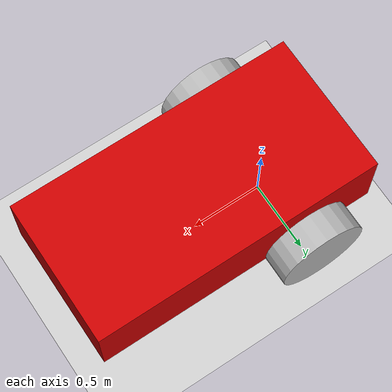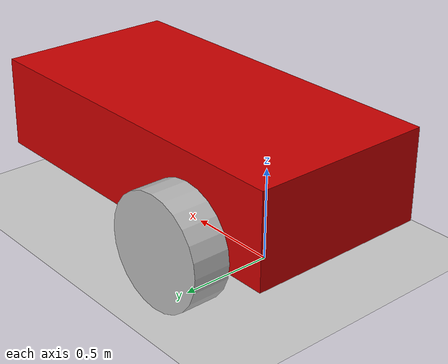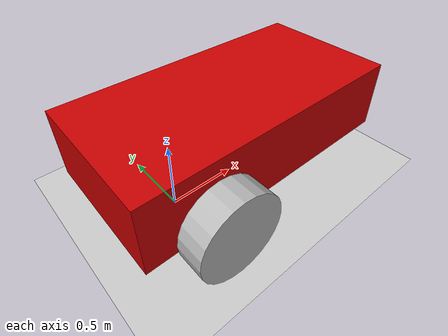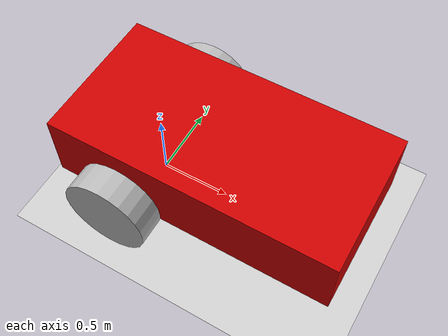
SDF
<sdf version="1.10">
 <world name="car_world">
  <physics name="1ms" type="ignored">
   <max_step_size>0.001</max_step_size>
   <real_time_factor>1.0</real_time_factor>
  </physics>
  <plugin filename="gz-sim-physics-system" name="gz::sim::systems::Physics"/>
  <plugin filename="gz-sim-user-commands-system" name="gz::sim::systems::UserCommands"/>
  <plugin filename="gz-sim-scene-broadcaster-system" name="gz::sim::systems::SceneBroadcaster"/>
  <light type="directional" name="sun">
   <pose>0 0 10 0 0 0</pose>
   <diffuse>0.8 0.8 0.8 1</diffuse>
   <specular>0.2 0.2 0.2 1</specular>
   <attenuation>
    <range>1000</range>
    <constant>0.9</constant>
    <linear>0.01</linear>
    <quadratic>0.001</quadratic>
   </attenuation>
   <direction>-0.5 0.1 -0.9</direction>
  </light>
  <model name="ground_plane">
   <static>true</static>
   <link name="link">
    <collision name="collision"><geometry><plane><normal>0 0 1</normal></plane></geometry></collision>
    <visual name="visual">
     <geometry><plane><normal>0 0 1</normal><size>100 100</size></plane></geometry>
     <material>
      <ambient>0.8 0.8 0.8 1</ambient>
      <diffuse>0.8 0.8 0.8 1</diffuse>
      <specular>0.8 0.8 0.8 1</specular>
     </material>
    </visual>
   </link>
  </model>
  <model name="vehicle_blue" canonical_link="chassis">
   <pose relative_to="world">0 0 0 0 0 0</pose>
   <link name="chassis">
    <pose relative_to="__model__">0.5 0 0.5 0 0 0</pose>
    <inertial>
     <mass>1.14395</mass>
     <inertia>
      <ixx>0.095329</ixx>
      <ixy>0</ixy>
      <ixz>0</ixz>
      <iyy>0.381317</iyy>
      <iyz>0</iyz>
      <izz>0.476646</izz>
     </inertia>
    </inertial>
    <visual name="visual">
     <geometry><box><size>2.0 1.0 0.5</size></box></geometry>
     <material>
      <ambient>0.8 0.0 0.0 1</ambient>
      <diffuse>0.8 0.0 0.0 1</diffuse>
      <specular>0.8 0.0 0.0 1</specular>
     </material>
    </visual>
    <collision name="collision"><geometry><box><size>2.0 1.0 0.5</size></box></geometry></collision>
   </link>
   <joint name="left_wheel_joint" type="revolute">
    <pose relative_to="left_wheel"/>
    <parent>chassis</parent>
    <child>left_wheel</child>
    <axis>
     <xyz expressed_in="__model__">0 1 0</xyz>
     <limit><lower>-1.79769e+308</lower><upper>1.79769e+308</upper></limit>
    </axis>
   </joint>
   <link name="left_wheel">
    <pose relative_to="chassis">-0.5 0.6 -0.2 -1.5707 0 0</pose>
    <inertial>
     <mass>1</mass>
     <inertia><ixx>0.043333</ixx><ixy>0</ixy><ixz>0</ixz><iyy>0.043333</iyy><iyz>0</iyz><izz>0.08</izz></inertia>
    </inertial>
    <visual name="visual">
     <geometry><cylinder><radius>0.3</radius><length>0.2</length></cylinder></geometry>
    </visual>
    <collision name="collision">
     <geometry><cylinder><radius>0.3</radius><length>0.2</length></cylinder></geometry>
    </collision>
   </link>
   <joint name="right_wheel_joint" type="revolute">
    <pose relative_to="right_wheel"/>
    <parent>chassis</parent>
    <child>right_wheel</child>
    <axis>
     <xyz expressed_in="__model__">0 1 0</xyz>
     <limit><lower>-1.79769e+308</lower><upper>1.79769e+308</upper></limit>
    </axis>
   </joint>
   <link name="right_wheel">
    <pose relative_to="chassis">-0.5 -0.6 -0.2 -1.5707 0 0</pose>
    <inertial>
     <mass>1</mass>
     <inertia><ixx>0.043333</ixx><ixy>0</ixy><ixz>0</ixz><iyy>0.043333</iyy><iyz>0</iyz><izz>0.08</izz></inertia>
    </inertial>
    <visual name="visual">
     <geometry><cylinder><radius>0.3</radius><length>0.2</length></cylinder></geometry>
    </visual>
    <collision name="collision">
     <geometry><cylinder><radius>0.3</radius><length>0.2</length></cylinder></geometry>
    </collision>
   </link>
   <joint name="caster_wheel" type="ball"><parent>chassis</parent><child>caster</child></joint>
   <frame name="caster_frame" attached_to="chassis"><pose>0.6 0 -0.2 0 0 0</pose></frame>
   <link name="caster">
    <pose relative_to="caster_frame"/>
    <inertial>
     <mass>1</mass>
     <inertia><ixx>0.016</ixx><ixy>0</ixy><ixz>0</ixz><iyy>0.016</iyy><iyz>0</iyz><izz>0.016</izz></inertia>
    </inertial>
    <visual name="visual"><geometry><sphere><radius>0.3</radius></sphere></geometry></visual>
    <collision name="collision"><geometry><sphere><radius>0.3</radius></sphere></geometry></collision>
   </link>
   <plugin filename="gz-sim-diff-drive-system" name="gz::sim::systems::DiffDrive">
    <left_joint>left_wheel_joint</left_joint>
    <right_joint>right_wheel_joint</right_joint>
    <wheel_separation>1.2</wheel_separation>
    <wheel_radius>0.3</wheel_radius>
    <odom_publish_frequency>1</odom_publish_frequency>
    <topic>cmd_vel</topic>
   </plugin>
   <plugin filename="gz-sim-triggered-publisher-system" name="gz::sim::systems::TriggeredPublisher">
    <input type="gz.msgs.Int32" topic="/keyboard/keypress"><match field="data">16777235</match></input>
    <output type="gz.msgs.Twist" topic="/cmd_vel">linear: {x: 0.5}, angular: {z: 0.0}</output>
   </plugin>
   <plugin filename="gz-sim-triggered-publisher-system" name="gz::sim::systems::TriggeredPublisher">
    <input type="gz.msgs.Int32" topic="/keyboard/keypress"><match field="data">16777237</match></input>
    <output type="gz.msgs.Twist" topic="/cmd_vel">linear: {x: -0.5}, angular: {z: 0.0}</output>
   </plugin>
   <plugin filename="gz-sim-triggered-publisher-system" name="gz::sim::systems::TriggeredPublisher">
    <input type="gz.msgs.Int32" topic="/keyboard/keypress"><match field="data">16777234</match></input>
    <output type="gz.msgs.Twist" topic="/cmd_vel">linear: {x: 0.0}, angular: {z: 0.5}</output>
   </plugin>
   <plugin filename="gz-sim-triggered-publisher-system" name="gz::sim::systems::TriggeredPublisher">
    <input type="gz.msgs.Int32" topic="/keyboard/keypress"><match field="data">16777236</match></input>
    <output type="gz.msgs.Twist" topic="/cmd_vel">linear: {x: 0.0}, angular: {z: -0.5}</output>
   </plugin>
   <plugin filename="gz-sim-triggered-publisher-system" name="gz::sim::systems::TriggeredPublisher">
    <input type="gz.msgs.Int32" topic="/keyboard/keypress"><match field="data">92</match></input>
    <output type="gz.msgs.Twist" topic="/cmd_vel">linear: {x: 0.0}, angular: {z: 0.0}</output>
   </plugin>
  </model>
 </world>
</sdf>
